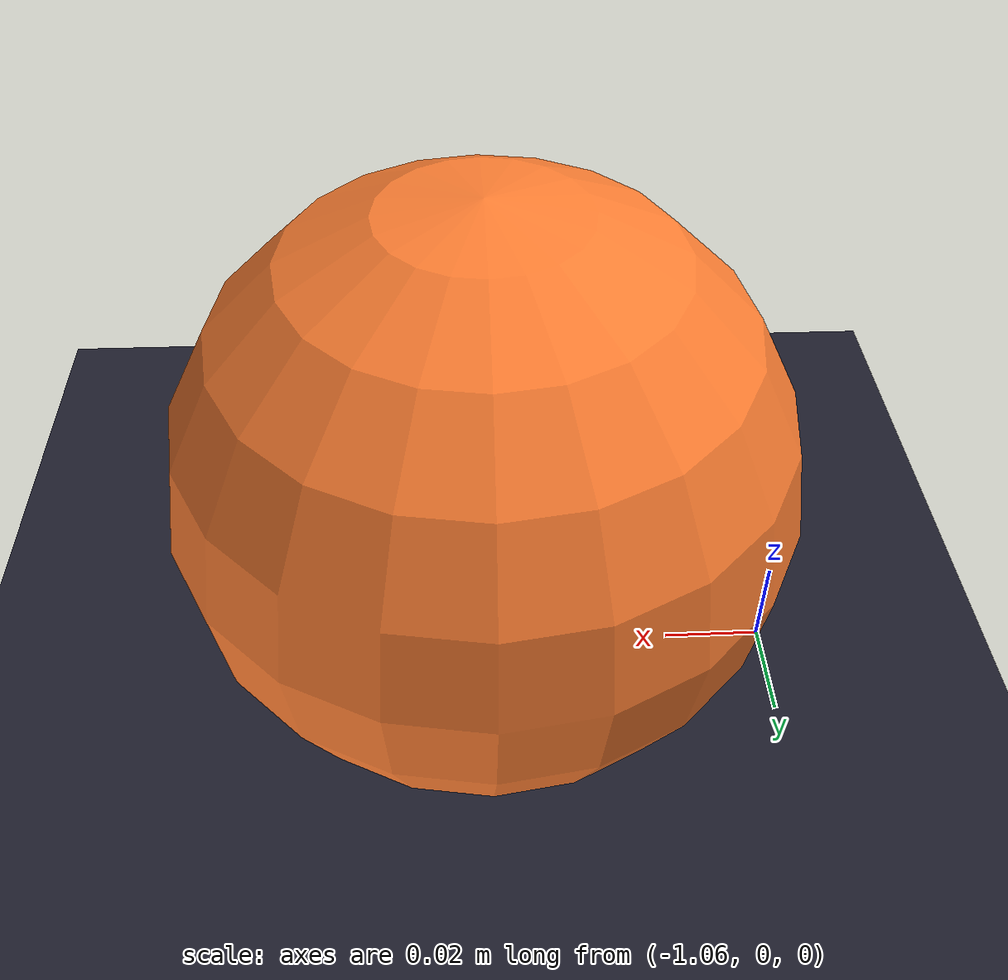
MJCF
<mujoco model="spiral_tube">
  <option timestep="0.002" gravity="0 0 0" integrator="RK4"/>
  <!-- No gravity: isolate the curvilinear impetus question -->

  <asset>
    <material name="ground" rgba="0.12 0.12 0.18 1" specular="0" shininess="0"/>
    <!-- Tube walls invisible in MuJoCo render; canvas draws smooth walls instead -->
    <material name="tube_outer" rgba="0 0 0 0" specular="0" shininess="0"/>
    <material name="tube_inner" rgba="0 0 0 0" specular="0" shininess="0"/>
  </asset>

  <worldbody>
    <light pos="0 0 5" dir="0 0 -1" diffuse="0.8 0.8 0.8" castshadow="false"/>
    <light pos="0 -3 3" dir="0 0.5 -0.5" diffuse="0.4 0.4 0.5"/>

    <!-- Ground reference plane (visual only) -->
    <geom type="plane" size="5 5 0.01" material="ground" contype="0" conaffinity="0"/>

    <!-- Curved channel: quarter-circle arc from angle pi to pi/2 -->
    <!-- Outer wall (radius 1.12) — 24 short segments for smooth curve -->
    <geom type="capsule" size="0.03 0.0366" pos="-1.1188 0 0.0866" euler="0 90 88.1" material="tube_outer" contype="0" conaffinity="0"/>
    <geom type="capsule" size="0.03 0.0366" pos="-1.1140 0 0.1597" euler="0 90 84.4" material="tube_outer" contype="0" conaffinity="0"/>
    <geom type="capsule" size="0.03 0.0366" pos="-1.1044 0 0.2323" euler="0 90 80.6" material="tube_outer" contype="0" conaffinity="0"/>
    <geom type="capsule" size="0.03 0.0366" pos="-1.0902 0 0.3042" euler="0 90 76.9" material="tube_outer" contype="0" conaffinity="0"/>
    <geom type="capsule" size="0.03 0.0366" pos="-1.0712 0 0.3749" euler="0 90 73.1" material="tube_outer" contype="0" conaffinity="0"/>
    <geom type="capsule" size="0.03 0.0366" pos="-1.0477 0 0.4443" euler="0 90 69.4" material="tube_outer" contype="0" conaffinity="0"/>
    <geom type="capsule" size="0.03 0.0366" pos="-1.0196 0 0.5120" euler="0 90 65.6" material="tube_outer" contype="0" conaffinity="0"/>
    <geom type="capsule" size="0.03 0.0366" pos="-0.9872 0 0.5777" euler="0 90 61.9" material="tube_outer" contype="0" conaffinity="0"/>
    <geom type="capsule" size="0.03 0.0366" pos="-0.9506 0 0.6411" euler="0 90 58.1" material="tube_outer" contype="0" conaffinity="0"/>
    <geom type="capsule" size="0.03 0.0366" pos="-0.9099 0 0.7020" euler="0 90 54.4" material="tube_outer" contype="0" conaffinity="0"/>
    <geom type="capsule" size="0.03 0.0366" pos="-0.8653 0 0.7601" euler="0 90 50.6" material="tube_outer" contype="0" conaffinity="0"/>
    <geom type="capsule" size="0.03 0.0366" pos="-0.8170 0 0.8152" euler="0 90 46.9" material="tube_outer" contype="0" conaffinity="0"/>
    <geom type="capsule" size="0.03 0.0366" pos="-0.7652 0 0.8670" euler="0 90 43.1" material="tube_outer" contype="0" conaffinity="0"/>
    <geom type="capsule" size="0.03 0.0366" pos="-0.7101 0 0.9153" euler="0 90 39.4" material="tube_outer" contype="0" conaffinity="0"/>
    <geom type="capsule" size="0.03 0.0366" pos="-0.6520 0 0.9599" euler="0 90 35.6" material="tube_outer" contype="0" conaffinity="0"/>
    <geom type="capsule" size="0.03 0.0366" pos="-0.5911 0 1.0006" euler="0 90 31.9" material="tube_outer" contype="0" conaffinity="0"/>
    <geom type="capsule" size="0.03 0.0366" pos="-0.5277 0 1.0372" euler="0 90 28.1" material="tube_outer" contype="0" conaffinity="0"/>
    <geom type="capsule" size="0.03 0.0366" pos="-0.4620 0 1.0696" euler="0 90 24.4" material="tube_outer" contype="0" conaffinity="0"/>
    <geom type="capsule" size="0.03 0.0366" pos="-0.3943 0 1.0977" euler="0 90 20.6" material="tube_outer" contype="0" conaffinity="0"/>
    <geom type="capsule" size="0.03 0.0366" pos="-0.3249 0 1.1212" euler="0 90 16.9" material="tube_outer" contype="0" conaffinity="0"/>
    <geom type="capsule" size="0.03 0.0366" pos="-0.2542 0 1.1402" euler="0 90 13.1" material="tube_outer" contype="0" conaffinity="0"/>
    <geom type="capsule" size="0.03 0.0366" pos="-0.1823 0 1.1544" euler="0 90 9.4" material="tube_outer" contype="0" conaffinity="0"/>
    <geom type="capsule" size="0.03 0.0366" pos="-0.1097 0 1.1640" euler="0 90 5.6" material="tube_outer" contype="0" conaffinity="0"/>
    <geom type="capsule" size="0.03 0.0366" pos="-0.0366 0 1.1688" euler="0 90 1.9" material="tube_outer" contype="0" conaffinity="0"/>

    <!-- Inner wall (radius 0.88) — 24 short segments for smooth curve -->
    <geom type="capsule" size="0.03 0.0288" pos="-0.8791 0 0.0788" euler="0 90 88.1" material="tube_inner" contype="0" conaffinity="0"/>
    <geom type="capsule" size="0.03 0.0288" pos="-0.8753 0 0.1362" euler="0 90 84.4" material="tube_inner" contype="0" conaffinity="0"/>
    <geom type="capsule" size="0.03 0.0288" pos="-0.8678 0 0.1933" euler="0 90 80.6" material="tube_inner" contype="0" conaffinity="0"/>
    <geom type="capsule" size="0.03 0.0288" pos="-0.8566 0 0.2497" euler="0 90 76.9" material="tube_inner" contype="0" conaffinity="0"/>
    <geom type="capsule" size="0.03 0.0288" pos="-0.8417 0 0.3053" euler="0 90 73.1" material="tube_inner" contype="0" conaffinity="0"/>
    <geom type="capsule" size="0.03 0.0288" pos="-0.8232 0 0.3598" euler="0 90 69.4" material="tube_inner" contype="0" conaffinity="0"/>
    <geom type="capsule" size="0.03 0.0288" pos="-0.8011 0 0.4130" euler="0 90 65.6" material="tube_inner" contype="0" conaffinity="0"/>
    <geom type="capsule" size="0.03 0.0288" pos="-0.7757 0 0.4646" euler="0 90 61.9" material="tube_inner" contype="0" conaffinity="0"/>
    <geom type="capsule" size="0.03 0.0288" pos="-0.7469 0 0.5145" euler="0 90 58.1" material="tube_inner" contype="0" conaffinity="0"/>
    <geom type="capsule" size="0.03 0.0288" pos="-0.7149 0 0.5623" euler="0 90 54.4" material="tube_inner" contype="0" conaffinity="0"/>
    <geom type="capsule" size="0.03 0.0288" pos="-0.6799 0 0.6080" euler="0 90 50.6" material="tube_inner" contype="0" conaffinity="0"/>
    <geom type="capsule" size="0.03 0.0288" pos="-0.6419 0 0.6512" euler="0 90 46.9" material="tube_inner" contype="0" conaffinity="0"/>
    <geom type="capsule" size="0.03 0.0288" pos="-0.6012 0 0.6919" euler="0 90 43.1" material="tube_inner" contype="0" conaffinity="0"/>
    <geom type="capsule" size="0.03 0.0288" pos="-0.5580 0 0.7299" euler="0 90 39.4" material="tube_inner" contype="0" conaffinity="0"/>
    <geom type="capsule" size="0.03 0.0288" pos="-0.5123 0 0.7649" euler="0 90 35.6" material="tube_inner" contype="0" conaffinity="0"/>
    <geom type="capsule" size="0.03 0.0288" pos="-0.4645 0 0.7969" euler="0 90 31.9" material="tube_inner" contype="0" conaffinity="0"/>
    <geom type="capsule" size="0.03 0.0288" pos="-0.4146 0 0.8257" euler="0 90 28.1" material="tube_inner" contype="0" conaffinity="0"/>
    <geom type="capsule" size="0.03 0.0288" pos="-0.3630 0 0.8511" euler="0 90 24.4" material="tube_inner" contype="0" conaffinity="0"/>
    <geom type="capsule" size="0.03 0.0288" pos="-0.3098 0 0.8732" euler="0 90 20.6" material="tube_inner" contype="0" conaffinity="0"/>
    <geom type="capsule" size="0.03 0.0288" pos="-0.2553 0 0.8917" euler="0 90 16.9" material="tube_inner" contype="0" conaffinity="0"/>
    <geom type="capsule" size="0.03 0.0288" pos="-0.1997 0 0.9066" euler="0 90 13.1" material="tube_inner" contype="0" conaffinity="0"/>
    <geom type="capsule" size="0.03 0.0288" pos="-0.1433 0 0.9178" euler="0 90 9.4" material="tube_inner" contype="0" conaffinity="0"/>
    <geom type="capsule" size="0.03 0.0288" pos="-0.0862 0 0.9253" euler="0 90 5.6" material="tube_inner" contype="0" conaffinity="0"/>
    <geom type="capsule" size="0.03 0.0288" pos="-0.0288 0 0.9291" euler="0 90 1.9" material="tube_inner" contype="0" conaffinity="0"/>

    <!-- Exit arrow invisible in MuJoCo; canvas draws exit marker -->
    <geom type="capsule" size="0.015 0.12" pos="0.25 0 1.05" euler="0 90 90" rgba="0 0 0 0" contype="0" conaffinity="0"/>

    <!-- The ball: starts at bottom of arc, scripted simulation moves it through -->
    <body name="ball" pos="-1.0 0 0.05">
      <joint type="free" damping="0"/>
      <geom type="sphere" size="0.06" mass="0.5" rgba="1.0 0.5 0.2 1"
            contype="0" conaffinity="0"/>
      <site name="force_point" pos="0 0 0" size="0.01"/>
    </body>

    <!-- Cameras -->
    <camera name="side" pos="0 -4 0.8" xyaxes="1 0 0 0 0.3 1"/>
    <camera name="top" pos="0 0 5" xyaxes="1 0 0 0 1 0"/>
  </worldbody>

  <actuator>
    <motor name="push_force" site="force_point" gear="1 0 0 0 0 0"
           ctrllimited="true" ctrlrange="-10 10"/>
  </actuator>

  <sensor>
    <framepos name="ball_pos" objtype="body" objname="ball"/>
    <framelinvel name="ball_vel" objtype="body" objname="ball"/>
  </sensor>
</mujoco>
